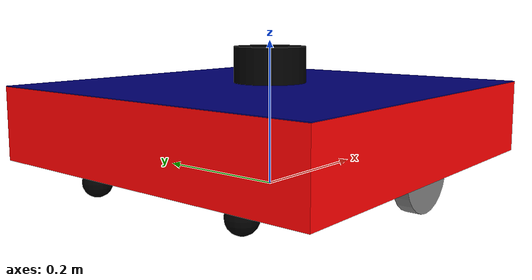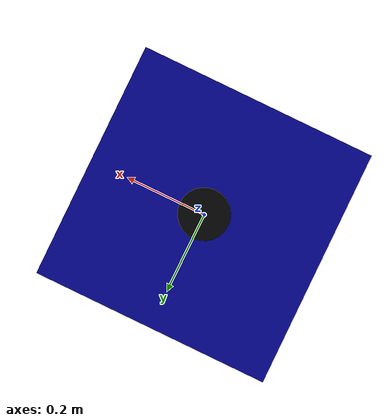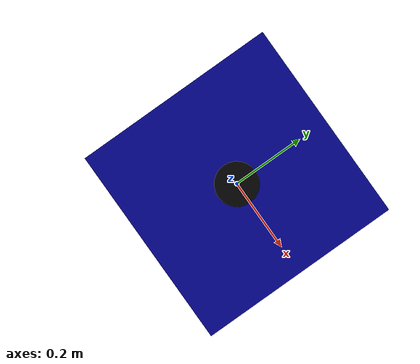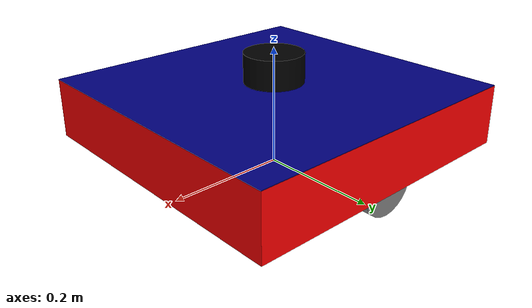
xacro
<?xml version="1.0"?>
<robot name="my_amr" xmlns:xacro="http://www.ros.org/wiki/xacro">

    <xacro:include filename="common_properties.xacro"/>
    <xacro:include filename="mobile_base.xacro"/>
    <xacro:include filename="lidar.xacro"/>
    <xacro:include filename="gazebo_control.xacro"/>

</robot>

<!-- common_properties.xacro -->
<robot name="my_amr" xmlns:xacro="http://www.ros.org/wiki/xacro">

    <!-- Colors -->
        <material name="red">
            <color rgba="1 0 0 1"/>
        </material>

        <material name="blue">
            <color rgba="0 0 0.5 1"/>
        </material>

        <material name="black">
            <color rgba="0 0 0 1"/>
        </material>

        <material name="grey">
            <color rgba="0.5 0.5 0.5 1"/>
        </material>

    <!-- Variables and Constants -->
        <!-- Body dimensions -->
            <!-- Body Width/Length -->
            <xacro:property name="c" value="0.5"/>
            <!-- Body Height -->
            <xacro:property name="b" value="0.1"/>
            <!-- Body Mass -->
            <xacro:property name="body_mass" value="20.0"/>

        <!-- Wheel and caster dimensions -->
            <!-- Wheel radius -->
                <xacro:property name="r" value="0.05"/>
            <!-- Wheel width -->
                <xacro:property name="d" value="0.02"/>
            <!-- Wheel offset -->
                <xacro:property name="wheel_offset" value="0.01"/>
            <!-- Wheel Mass -->
                <xacro:property name="wheel_mass" value="0.5"/>
            <!-- Caster radius -->
                <xacro:property name="r_caster" value="0.02"/>
            <!-- Caster Mass -->
                <xacro:property name="caster_mass" value="0.1"/>

        <!-- Lidar and Roof dimensions -->
            <!-- Lidar Radius -->
                <xacro:property name="lidar_radius" value="0.05"/>
            <!-- Lidar Length -->
                <xacro:property name="lidar_length" value="0.05"/>
            <!-- Lidar Mass -->
                <xacro:property name="lidar_mass" value="0.5"/>
            <!-- Roof Height-->
                <xacro:property name="roof_height" value="0.001"/>
            <!-- Roof Mass -->
                <xacro:property name="roof_mass" value="1.0"/>

        <!-- S Value -->
            <xacro:property name="S1" value="${b/2.0+2.0*r_caster}"/>
            <xacro:property name="S2" value="0.2"/>
            <xacro:property name="S3" value="0.125"/>
            <xacro:property name="S4" value="${c/2.0-d/2.0}"/>

    <!-- Inertia -->
        <xacro:macro name="box_inertia" params="m l w h xyz rpy">
            <inertial>
                <origin xyz="${xyz}" rpy="${rpy}"/>
                <mass value="${m}"/>
                <inertia ixx="${(m/12.0) * (h*h + l*l)}" ixy="0" ixz="0"
                         iyy="${(m/12.0) * (w*w + l*l)}" iyz="0"
                         izz="${(m/12.0) * (w*w + h*h)}"/>
            </inertial>
        </xacro:macro>

        <xacro:macro name="cylinder_inertia" params="m r h xyz rpy">
            <inertial>
                <origin xyz="${xyz}" rpy="${rpy}"/>
                <mass value="${m}"/>
                <inertia ixx="${(m/12.0) * (3.0*r*r + h*h)}" ixy="0" ixz="0"
                         iyy="${(m/12.0) * (3.0*r*r + h*h)}" iyz="0"
                         izz="${(m/2.0) * (r*r)}"/>
            </inertial>
        </xacro:macro>

        <xacro:macro name="sphere_inertia" params="m r xyz rpy">
            <inertial>
                <origin xyz="${xyz}" rpy="${rpy}"/>
                <mass value="${m}"/>
                <inertia ixx="${(2/5) * m * r * r}" ixy="0" ixz="0"
                         iyy="${(2/5) * m * r * r}" iyz="0"
                         izz="${(2/5) * m * r * r}"/>
            </inertial>
        </xacro:macro>

</robot>

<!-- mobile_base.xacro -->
<robot name="my_amr" xmlns:xacro="http://www.ros.org/wiki/xacro">

    <!-- Links -->
        <!-- Base Footprint -->
            <link name="base_footprint">
                <!-- Refer to Platform -->
            </link>

        <!-- Base (Chassis) -->
            <link name="base_link">
                <visual>
                    <geometry>
                        <box size="${c} ${c} ${b}"/>
                    </geometry>
                    <origin xyz="0 0 ${S1}" rpy="0 0 0"/>
                    <material name="red"/>
                </visual>
                <collision>
                    <geometry>
                        <box size="${c} ${c} ${b}"/>
                    </geometry>
                    <origin xyz="0 0 ${S1}" rpy="0 0 0"/>
                </collision>
                <xacro:box_inertia m="${body_mass}" l="${b}" w="${c}" h="${c}"
                                   xyz="0 0 ${S1}" rpy="0 0 0"/>
            </link>
            <joint name="base_footprint_base_joint" type="fixed">
                <parent link="base_footprint"/>
                <child link="base_link"/>
                <origin xyz="0 0 0" rpy="0 0 0"/>
            </joint>
            <gazebo reference="base_link">
                <material>Gazebo/Red</material>
            </gazebo>

        <!-- Wheels -->
            <xacro:macro name="wheel_link" params="prefix offset y">
                <link name="${prefix}_wheel_link">
                    <visual>
                        <geometry>
                            <cylinder radius="${r}" length="${d}"/>
                        </geometry>
                        <origin xyz="0 ${offset} 0" rpy="${pi/2.0} 0 0"/>
                        <material name="grey"/>
                    </visual>
                    <collision>
                        <geometry>
                            <cylinder radius="${r}" length="${d}"/>
                        </geometry>
                        <origin xyz="0 ${offset} 0" rpy="${pi/2.0} 0 0"/>
                    </collision>
                    <xacro:cylinder_inertia m="${wheel_mass}" r="${r}" h="${d}"
                                            xyz="0 ${offset} 0" rpy="${pi/2.0} 0 0"/>
                </link>
                <joint name="base_${prefix}_wheel_joint" type="continuous">
                    <parent link="base_link"/>
                    <child link="${prefix}_wheel_link"/>
                    <origin xyz="0 ${y} ${r}" rpy="0 0 0"/>
                    <axis xyz="0 1 0"/>
                </joint>
                <gazebo reference="${prefix}_wheel_link">
                    <material>Gazebo/Grey</material>
                </gazebo>
            </xacro:macro>
            <xacro:wheel_link prefix="right" offset="${wheel_offset}" y="${-S4}"/>
            <xacro:wheel_link prefix="left" offset="${-wheel_offset}" y="${S4}"/>

        <!-- Casters -->
            <xacro:macro name="caster_wheel_link" params="id x y">
                <link name="caster_wheel_${id}_link">
                    <visual>
                        <geometry>
                            <sphere radius="${r_caster}"/>
                        </geometry>
                        <origin xyz="0 0 0" rpy="0 0 0"/>
                        <material name="black"/>
                    </visual>
                    <collision>
                        <geometry>
                            <sphere radius="${r_caster}"/>
                        </geometry>
                        <origin xyz="0 0 0" rpy="0 0 0"/>
                    </collision>
                    <xacro:sphere_inertia m="${caster_mass}" r="${r_caster}"
                                          xyz="0 0 0" rpy="0 0 0"/>
                </link>
                <joint name="base_caster_wheel_${id}_joint" type="fixed">
                    <parent link="base_link"/>
                    <child link="caster_wheel_${id}_link"/>
                    <origin xyz="${x} ${y} ${r_caster}" rpy="0 0 0"/>
                </joint>
                <gazebo reference="caster_wheel_${id}_link">
                    <material>Gazebo/Black</material>
                    <mu1 value="0.001"/>
                    <mu2 value="0.001"/>
                </gazebo>
            </xacro:macro>
            <xacro:caster_wheel_link id="1" x="${-S2}" y="${S3}"/>
            <xacro:caster_wheel_link id="2" x="${-S2}" y="${-S3}"/>
            <xacro:caster_wheel_link id="3" x="${S2}" y="${S3}"/>
            <xacro:caster_wheel_link id="4" x="${S2}" y="${-S3}"/>

        <!-- Roof (Optional) -->
            <link name="roof_link">
                <visual>
                    <geometry>
                        <box size="${c} ${c} ${roof_height}"/>
                    </geometry>
                    <origin xyz="0 0 ${roof_height/2.0}" rpy="0 0 0"/>
                    <material name="blue"/>
                </visual>
                <collision>
                    <geometry>
                        <box size="${c} ${c} ${roof_height}"/>
                    </geometry>
                    <origin xyz="0 0 ${roof_height/2.0}" rpy="0 0 0"/>
                </collision>
                <xacro:box_inertia m="${roof_mass}" l="${roof_height}" w="${c}" h="${c}"
                                   xyz="0 0 ${roof_height/2.0}" rpy="0 0 0"/>
            </link>
            <joint name="base_roof_joint" type="fixed">
                <parent link="base_link"/>
                <child link="roof_link"/>
                <origin xyz="0 0 ${S1 + (b + 2*r_caster - S1)}" rpy="0 0 0"/>
            </joint>
            <gazebo reference="roof_link">
                <material>Gazebo/Blue</material>
            </gazebo>

</robot>

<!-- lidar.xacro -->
<robot name="my_amr" xmlns:xacro="http://www.ros.org/wiki/xacro">

    <link name="lidar_link">
        <visual>
            <geometry>
                <cylinder radius="${lidar_radius}" length="${lidar_length}"/>
            </geometry>
            <origin xyz="0 0 ${(lidar_length + roof_height)/2.0}" rpy="0 0 0"/>
            <material name="black"/>
        </visual>
        <collision>
            <geometry>
                <cylinder radius="${lidar_radius}" length="${lidar_length}"/>
            </geometry>
            <origin xyz="0 0 ${(lidar_length + roof_height)/2.0}" rpy="0 0 0"/>
        </collision>
        <xacro:cylinder_inertia m="${lidar_mass}" r="${lidar_radius}" h="${lidar_length}"
                                xyz="0 0 ${(lidar_length + roof_height)/2.0}" rpy="0 0 0"/>
    </link>
    <joint name="base_lidar_joint" type="fixed">
        <parent link="base_link"/>
        <child link="lidar_link"/>
        <origin xyz="0 0 ${(S1 + (b + 2*r_caster - S1)) + 2*roof_height}" rpy="0 0 0"/>
    </joint>
    <gazebo reference="lidar_link">
        <material>Gazebo/Black</material>
        <sensor name="laser" type="ray">
            <pose> 0 0 0 0 0 0 </pose>
            <visualize>false</visualize>
            <update_rate>50</update_rate>
            <ray>
                <scan>
                    <horizontal>
                        <samples>360</samples>
                        <resolution>1</resolution>
                        <min_angle>-3.14</min_angle>
                        <max_angle>3.14</max_angle>
                    </horizontal>
                </scan>
                <range>
                    <min>0.3</min>
                    <max>12</max>
                    <resolution>0.01</resolution>
                </range>
            </ray>
            <plugin name="laser_controller" filename="libgazebo_ros_ray_sensor.so">
                <ros>
                    <argument>~/out:=scan</argument>
                </ros>
                <output_type>sensor_msgs/LaserScan</output_type>
                <frame_name>lidar_link</frame_name>
            </plugin>
        </sensor>
    </gazebo>

</robot>
